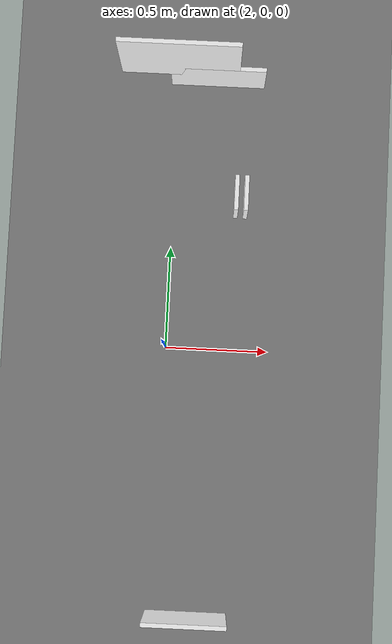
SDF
<sdf version="1.9">
 <world name="tunnel_world">
  <model name="ground_plane">
   <static>true</static>
   <link name="ground">
    <collision name="ground_collision">
     <geometry><plane><normal>0 0 1</normal><size>100 100</size></plane></geometry>
    </collision>
    <visual name="ground_visual">
     <geometry><plane><normal>0 0 1</normal><size>100 100</size></plane></geometry>
     <material>
      <diffuse>0.50 0.50 0.50 1</diffuse>
      <emissive>0.08 0.08 0.08 1</emissive>
      <ambient>0.5 0.5 0.5</ambient>
     </material>
    </visual>
   </link>
  </model>
  <model name="defect_crack_21">
   <static>true</static>
   <pose>2.16 -1.25 0.414 0 0 0</pose>
   <link name="link">
    <visual name="visual">
     <laser_retro>500</laser_retro>
     <geometry><box><size>0.375 0.02 0.345</size></box></geometry>
     <material>
      <ambient>1 1 1 1</ambient>
      <diffuse>1 1 1 1</diffuse>
      <emissive>0.05 0.05 0.05 1</emissive>
      <specular>0.05 0.05 0.05 1</specular>
      <pbr>
       <metal>
        <albedo_map>file:///home/ylf/workspace/inspection_robot/data_gen/textures_data1/crack_17.png</albedo_map>
        <metalness>0.0</metalness>
        <roughness>0.9</roughness>
       </metal>
      </pbr>
     </material>
    </visual>
    <collision name="collision"><geometry><box><size>0.375 0.02 0.345</size></box></geometry></collision>
   </link>
  </model>
  <model name="defect_rail_fastener_loose_04">
   <static>true</static>
   <pose>2.357 0.717 0.26 0 0 0</pose>
   <link name="link">
    <visual name="visual">
     <laser_retro>380</laser_retro>
     <geometry><box><size>0.02 0.167 0.211</size></box></geometry>
     <material>
      <ambient>1 1 1 1</ambient>
      <diffuse>1 1 1 1</diffuse>
      <emissive>0.05 0.05 0.05 1</emissive>
      <specular>0.05 0.05 0.05 1</specular>
      <pbr>
       <metal>
        <albedo_map>file:///home/ylf/workspace/inspection_robot/data_gen/textures_data1/rail_fastener_loose_14.png</albedo_map>
        <metalness>0.0</metalness>
        <roughness>0.9</roughness>
       </metal>
      </pbr>
     </material>
    </visual>
   </link>
  </model>
  <model name="defect_rail_fastener_loose_17">
   <static>true</static>
   <pose>2.311 0.717 0.26 0 0 0</pose>
   <link name="link">
    <visual name="visual">
     <laser_retro>380</laser_retro>
     <geometry><box><size>0.02 0.165 0.21</size></box></geometry>
     <material>
      <ambient>1 1 1 1</ambient>
      <diffuse>1 1 1 1</diffuse>
      <emissive>0.05 0.05 0.05 1</emissive>
      <specular>0.05 0.05 0.05 1</specular>
      <pbr>
       <metal>
        <albedo_map>file:///home/ylf/workspace/inspection_robot/data_gen/textures_data1/rail_fastener_loose_4.png</albedo_map>
        <metalness>0.0</metalness>
        <roughness>0.9</roughness>
       </metal>
      </pbr>
     </material>
    </visual>
   </link>
  </model>
  <model name="defect_spalling_24">
   <static>true</static>
   <pose>2.2 1.25 0.415 0 0 0</pose>
   <link name="link">
    <visual name="visual">
     <laser_retro>700</laser_retro>
     <geometry><box><size>0.439 0.02 0.237</size></box></geometry>
     <material>
      <ambient>1 1 1 1</ambient>
      <diffuse>1 1 1 1</diffuse>
      <emissive>0.05 0.05 0.05 1</emissive>
      <specular>0.05 0.05 0.05 1</specular>
      <pbr>
       <metal>
        <albedo_map>file:///home/ylf/workspace/inspection_robot/data_gen/textures_data1/spalling_7.png</albedo_map>
        <metalness>0.0</metalness>
        <roughness>0.9</roughness>
       </metal>
      </pbr>
     </material>
    </visual>
    <collision name="collision"><geometry><box><size>0.439 0.02 0.237</size></box></geometry></collision>
   </link>
  </model>
  <model name="defect_spalling_25">
   <static>true</static>
   <pose>2.027 1.25 0.648 0 0 0</pose>
   <link name="link">
    <visual name="visual">
     <laser_retro>700</laser_retro>
     <geometry><box><size>0.545 0.02 0.398</size></box></geometry>
     <material>
      <ambient>1 1 1 1</ambient>
      <diffuse>1 1 1 1</diffuse>
      <emissive>0.05 0.05 0.05 1</emissive>
      <specular>0.05 0.05 0.05 1</specular>
      <pbr>
       <metal>
        <albedo_map>file:///home/ylf/workspace/inspection_robot/data_gen/textures_data1/spalling_5.png</albedo_map>
        <metalness>0.0</metalness>
        <roughness>0.9</roughness>
       </metal>
      </pbr>
     </material>
    </visual>
    <collision name="collision"><geometry><box><size>0.545 0.02 0.398</size></box></geometry></collision>
   </link>
  </model>
 </world>
</sdf>
